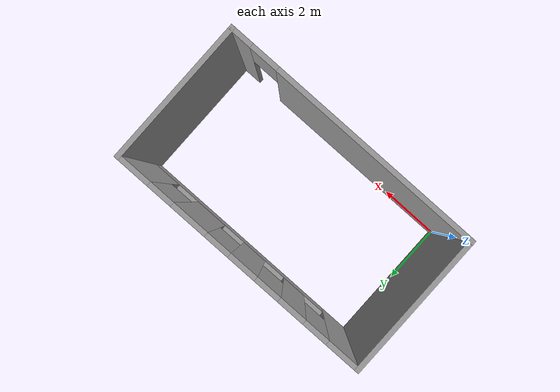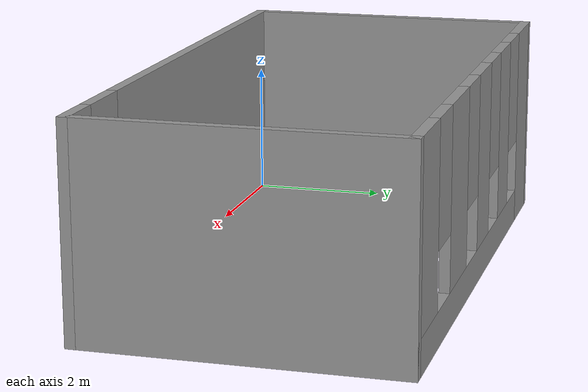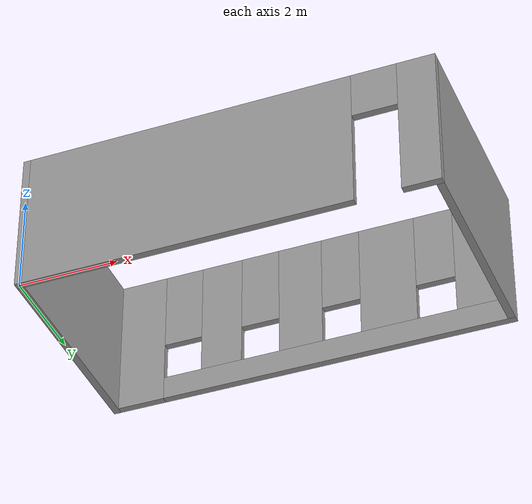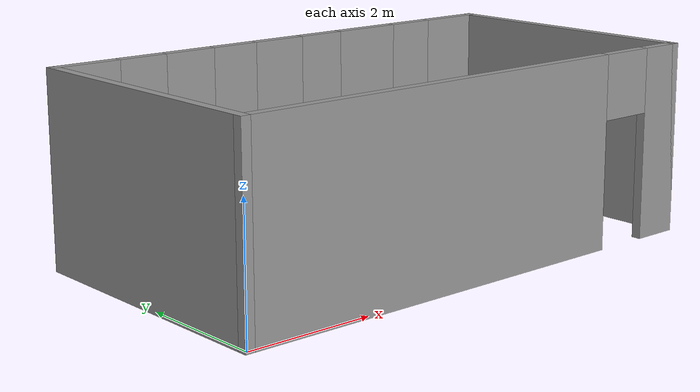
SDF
<?xml version='1.0'?>
<sdf version='1.6'>
  <model name='Tr11Lab'>
    <pose frame=''>4.125 2.2 0 0 -0 0</pose>
    <link name='Wall_10'>
      <collision name='Wall_10_Collision'>
        <geometry>
          <box>
            <size>4.55 0.15 3</size>
          </box>
        </geometry>
        <pose frame=''>0 0 1.5 0 -0 0</pose>
      </collision>
      <visual name='Wall_10_Visual'>
        <pose frame=''>0 0 1.5 0 -0 0</pose>
        <geometry>
          <box>
            <size>4.55 0.15 3</size>
          </box>
        </geometry>
        <material>
          <script>
            <uri>file://media/materials/scripts/gazebo.material</uri>
            <name>Gazebo/Grey</name>
          </script>
          <ambient>1 1 1 1</ambient>
        </material>
      </visual>
      <pose frame=''>4.125 0 0 0 0 -1.5708</pose>
    </link>
    <link name='Wall_6'>
      <pose frame=''>0 -2.2 0 0 -0 0</pose>
      <visual name='Wall_6_Visual_0'>
        <pose frame=''>-0.829278 0 1.5 0 -0 0</pose>
        <geometry>
          <box>
            <size>6.74144 0.15 3</size>
          </box>
        </geometry>
        <material>
          <script>
            <uri>file://media/materials/scripts/gazebo.material</uri>
            <name>Gazebo/Grey</name>
          </script>
          <ambient>1 1 1 1</ambient>
        </material>
      </visual>
      <collision name='Wall_6_Collision_0'>
        <geometry>
          <box>
            <size>6.74144 0.15 3</size>
          </box>
        </geometry>
        <pose frame=''>-0.829278 0 1.5 0 -0 0</pose>
      </collision>
      <visual name='Wall_6_Visual_1'>
        <pose frame=''>3.82072 0 1.5 0 -0 0</pose>
        <geometry>
          <box>
            <size>0.758557 0.15 3</size>
          </box>
        </geometry>
        <material>
          <script>
            <uri>file://media/materials/scripts/gazebo.material</uri>
            <name>Gazebo/Grey</name>
          </script>
          <ambient>1 1 1 1</ambient>
        </material>
      </visual>
      <collision name='Wall_6_Collision_1'>
        <geometry>
          <box>
            <size>0.758557 0.15 3</size>
          </box>
        </geometry>
        <pose frame=''>3.82072 0 1.5 0 -0 0</pose>
      </collision>
      <visual name='Wall_6_Visual_2'>
        <pose frame=''>2.99144 0 2.5 0 -0 0</pose>
        <geometry>
          <box>
            <size>0.9 0.15 1</size>
          </box>
        </geometry>
        <material>
          <script>
            <uri>file://media/materials/scripts/gazebo.material</uri>
            <name>Gazebo/Grey</name>
          </script>
          <ambient>1 1 1 1</ambient>
        </material>
      </visual>
      <collision name='Wall_6_Collision_2'>
        <geometry>
          <box>
            <size>0.9 0.15 1</size>
          </box>
        </geometry>
        <pose frame=''>2.99144 0 2.5 0 -0 0</pose>
      </collision>
    </link>
    <link name='Wall_8'>
      <collision name='Wall_8_Collision'>
        <geometry>
          <box>
            <size>4.55003 0.15 3</size>
          </box>
        </geometry>
        <pose frame=''>0 0 1.5 0 -0 0</pose>
      </collision>
      <visual name='Wall_8_Visual'>
        <pose frame=''>0 0 1.5 0 -0 0</pose>
        <geometry>
          <box>
            <size>4.55003 0.15 3</size>
          </box>
        </geometry>
        <material>
          <script>
            <uri>file://media/materials/scripts/gazebo.material</uri>
            <name>Gazebo/Grey</name>
          </script>
          <ambient>1 1 1 1</ambient>
        </material>
      </visual>
      <pose frame=''>-4.125 0 0 0 -0 1.5708</pose>
    </link>
    <link name='Wall_9'>
      <pose frame=''>0 2.2 0 0 -0 0</pose>
      <visual name='Wall_9_Visual_0'>
        <pose frame=''>-3.63767 0 1.5 0 -0 0</pose>
        <geometry>
          <box>
            <size>1.12466 0.15 3</size>
          </box>
        </geometry>
        <material>
          <script>
            <uri>file://media/materials/scripts/gazebo.material</uri>
            <name>Gazebo/Grey</name>
          </script>
          <ambient>1 1 1 1</ambient>
        </material>
      </visual>
      <collision name='Wall_9_Collision_0'>
        <geometry>
          <box>
            <size>1.12466 0.15 3</size>
          </box>
        </geometry>
        <pose frame=''>-3.63767 0 1.5 0 -0 0</pose>
      </collision>
      <visual name='Wall_9_Visual_1'>
        <pose frame=''>0.562332 0 0.25 0 -0 0</pose>
        <geometry>
          <box>
            <size>7.27534 0.15 0.5</size>
          </box>
        </geometry>
        <material>
          <script>
            <uri>file://media/materials/scripts/gazebo.material</uri>
            <name>Gazebo/Grey</name>
          </script>
          <ambient>1 1 1 1</ambient>
        </material>
      </visual>
      <collision name='Wall_9_Collision_1'>
        <geometry>
          <box>
            <size>7.27534 0.15 0.5</size>
          </box>
        </geometry>
        <pose frame=''>0.562332 0 0.25 0 -0 0</pose>
      </collision>
      <visual name='Wall_9_Visual_2'>
        <pose frame=''>-1.84456 0 1.75 0 -0 0</pose>
        <geometry>
          <box>
            <size>0.861556 0.15 2.5</size>
          </box>
        </geometry>
        <material>
          <script>
            <uri>file://media/materials/scripts/gazebo.material</uri>
            <name>Gazebo/Grey</name>
          </script>
          <ambient>1 1 1 1</ambient>
        </material>
      </visual>
      <collision name='Wall_9_Collision_2'>
        <geometry>
          <box>
            <size>0.861556 0.15 2.5</size>
          </box>
        </geometry>
        <pose frame=''>-1.84456 0 1.75 0 -0 0</pose>
      </collision>
      <visual name='Wall_9_Visual_3'>
        <pose frame=''>-0.156768 0 1.75 0 -0 0</pose>
        <geometry>
          <box>
            <size>0.914026 0.15 2.5</size>
          </box>
        </geometry>
        <material>
          <script>
            <uri>file://media/materials/scripts/gazebo.material</uri>
            <name>Gazebo/Grey</name>
          </script>
          <ambient>1 1 1 1</ambient>
        </material>
      </visual>
      <collision name='Wall_9_Collision_3'>
        <geometry>
          <box>
            <size>0.914026 0.15 2.5</size>
          </box>
        </geometry>
        <pose frame=''>-0.156768 0 1.75 0 -0 0</pose>
      </collision>
      <visual name='Wall_9_Visual_4'>
        <pose frame=''>1.67969 0 1.75 0 -0 0</pose>
        <geometry>
          <box>
            <size>1.15889 0.15 2.5</size>
          </box>
        </geometry>
        <material>
          <script>
            <uri>file://media/materials/scripts/gazebo.material</uri>
            <name>Gazebo/Grey</name>
          </script>
          <ambient>1 1 1 1</ambient>
        </material>
      </visual>
      <collision name='Wall_9_Collision_4'>
        <geometry>
          <box>
            <size>1.15889 0.15 2.5</size>
          </box>
        </geometry>
        <pose frame=''>1.67969 0 1.75 0 -0 0</pose>
      </collision>
      <visual name='Wall_9_Visual_5'>
        <pose frame=''>3.62957 0 1.75 0 -0 0</pose>
        <geometry>
          <box>
            <size>1.14087 0.15 2.5</size>
          </box>
        </geometry>
        <material>
          <script>
            <uri>file://media/materials/scripts/gazebo.material</uri>
            <name>Gazebo/Grey</name>
          </script>
          <ambient>1 1 1 1</ambient>
        </material>
      </visual>
      <collision name='Wall_9_Collision_5'>
        <geometry>
          <box>
            <size>1.14087 0.15 2.5</size>
          </box>
        </geometry>
        <pose frame=''>3.62957 0 1.75 0 -0 0</pose>
      </collision>
      <visual name='Wall_9_Visual_6'>
        <pose frame=''>-2.67534 0 2.15 0 -0 0</pose>
        <geometry>
          <box>
            <size>0.8 0.15 1.7</size>
          </box>
        </geometry>
        <material>
          <script>
            <uri>file://media/materials/scripts/gazebo.material</uri>
            <name>Gazebo/Grey</name>
          </script>
          <ambient>1 1 1 1</ambient>
        </material>
      </visual>
      <collision name='Wall_9_Collision_6'>
        <geometry>
          <box>
            <size>0.8 0.15 1.7</size>
          </box>
        </geometry>
        <pose frame=''>-2.67534 0 2.15 0 -0 0</pose>
      </collision>
      <visual name='Wall_9_Visual_7'>
        <pose frame=''>-1.01378 0 2.15 0 -0 0</pose>
        <geometry>
          <box>
            <size>0.8 0.15 1.7</size>
          </box>
        </geometry>
        <material>
          <script>
            <uri>file://media/materials/scripts/gazebo.material</uri>
            <name>Gazebo/Grey</name>
          </script>
          <ambient>1 1 1 1</ambient>
        </material>
      </visual>
      <collision name='Wall_9_Collision_7'>
        <geometry>
          <box>
            <size>0.8 0.15 1.7</size>
          </box>
        </geometry>
        <pose frame=''>-1.01378 0 2.15 0 -0 0</pose>
      </collision>
      <visual name='Wall_9_Visual_8'>
        <pose frame=''>0.700245 0 2.15 0 -0 0</pose>
        <geometry>
          <box>
            <size>0.8 0.15 1.7</size>
          </box>
        </geometry>
        <material>
          <script>
            <uri>file://media/materials/scripts/gazebo.material</uri>
            <name>Gazebo/Grey</name>
          </script>
          <ambient>1 1 1 1</ambient>
        </material>
      </visual>
      <collision name='Wall_9_Collision_8'>
        <geometry>
          <box>
            <size>0.8 0.15 1.7</size>
          </box>
        </geometry>
        <pose frame=''>0.700245 0 2.15 0 -0 0</pose>
      </collision>
      <visual name='Wall_9_Visual_9'>
        <pose frame=''>2.65913 0 2.15 0 -0 0</pose>
        <geometry>
          <box>
            <size>0.8 0.15 1.7</size>
          </box>
        </geometry>
        <material>
          <script>
            <uri>file://media/materials/scripts/gazebo.material</uri>
            <name>Gazebo/Grey</name>
          </script>
          <ambient>1 1 1 1</ambient>
        </material>
      </visual>
      <collision name='Wall_9_Collision_9'>
        <geometry>
          <box>
            <size>0.8 0.15 1.7</size>
          </box>
        </geometry>
        <pose frame=''>2.65913 0 2.15 0 -0 0</pose>
      </collision>
    </link>
    <static>1</static>
  </model>
</sdf>
